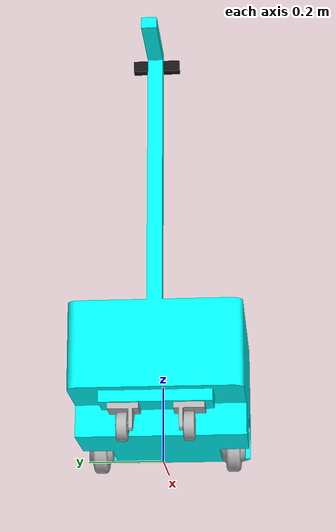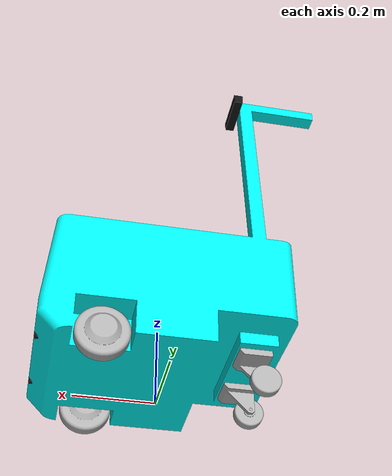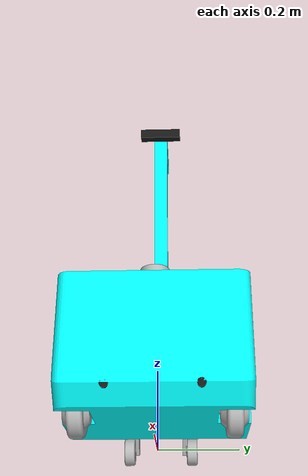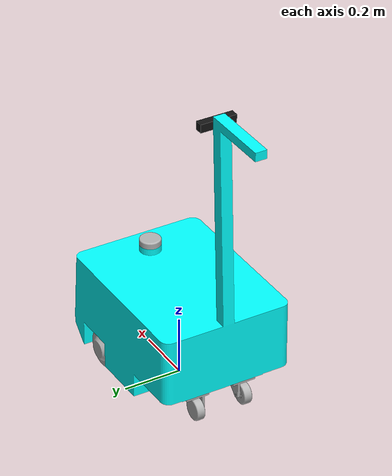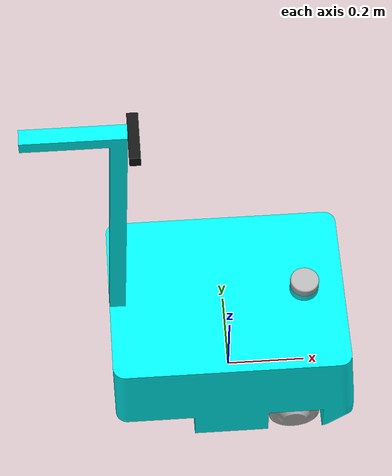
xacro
<?xml version="1.0" ?>
<robot name="VICA" xmlns:xacro="http://www.ros.org/wiki/xacro">

<!-- Keep includes relative so this file expands before the package is installed. -->
<xacro:include filename="materials.xacro" />

<xacro:arg name="use_arm" default="false" />
<xacro:property name="use_arm" value="$(arg use_arm)" />
<xacro:arg name="arm_riser_h" default="0.10" />
<xacro:property name="arm_riser_h" value="$(arg arm_riser_h)" />

<xacro:arg name="arm_model" default="omx" />
<xacro:property name="arm_model" value="$(arg arm_model)" />
<xacro:arg name="arm_link3_len" default="0.30" />
<xacro:arg name="arm_link4_len" default="0.28" />
<xacro:arg name="arm_link5_len" default="0.126" />

<xacro:property name="body_center_z" value="0.041" />
<xacro:property name="base_link_height" value="0.19" />
<xacro:property name="chassis_body_size_x" value="0.61" />
<xacro:property name="chassis_body_size_y" value="0.28" />
<xacro:property name="chassis_body_size_z" value="0.401" />
<xacro:property name="chassis_body_origin_z" value="0.0585" />
<xacro:property name="chassis_body_size"
                value="${chassis_body_size_x} ${chassis_body_size_y} ${chassis_body_size_z}" />
<xacro:property name="chassis_body_origin" value="0 0 ${chassis_body_origin_z}" />
<xacro:property name="chassis_deck_z"
                value="${chassis_body_origin_z + chassis_body_size_z / 2}" />
<xacro:property name="chassis_deck_measured_z" value="0.170" />
<xacro:property name="chassis_mast_size" value="0.24 0.04 0.626" />
<xacro:property name="chassis_mast_origin" value="-0.358 0 0.572" />

<!-- Sensor origins are relative to base_link. -->
<xacro:property name="laser_x" value="0.185" />
<xacro:property name="laser_y" value="0.0" />
<xacro:property name="laser_z" value="0.192" />
<xacro:property name="camera_x" value="-0.225" />
<xacro:property name="camera_y" value="0.0" />
<xacro:property name="camera_z" value="0.855" />
<xacro:property name="camera_pitch" value="-0.0124" />
<xacro:property name="usonic_x" value="0.305" />
<xacro:property name="usonic_y" value="0.107" />
<xacro:property name="usonic_z" value="-0.0987" />

<xacro:property name="wheel_separation" value="0.364" />
<xacro:property name="wheel_y" value="${wheel_separation / 2}" />
<xacro:property name="caster_steer_y" value="0.0845" />
<xacro:property name="caster_y" value="0.0795" />
<xacro:property name="caster_wheel_dy" value="${round(caster_y - caster_steer_y, 6)}" />

<!-- Conservative import defaults; tune these against the physical platform. -->
<xacro:property name="wheel_effort" value="100.0" />
<xacro:property name="wheel_velocity" value="20.0" />
<xacro:property name="wheel_damping" value="0.1" />
<!-- Primitive drive-wheel collisions derived from the STL bounds. -->
<xacro:property name="drive_wheel_radius" value="0.065" />
<xacro:property name="drive_wheel_width" value="0.0678" />
<!-- Primitive caster-wheel collisions derived from the STL bounds. -->
<xacro:property name="caster_wheel_radius" value="0.0375" />
<xacro:property name="caster_wheel_width" value="0.04" />
<xacro:property name="caster_collision_radius" value="0.042" />

<link name="base_footprint"/>

<joint name="base_footprint_joint" type="fixed">
  <origin xyz="0 0 ${base_link_height}" rpy="0 0 0"/>
  <parent link="base_footprint"/>
  <child link="base_link"/>
</joint>

<link name="base_link">
  <inertial>
    <origin xyz="0.004031215194176557 3.002726997808124e-17 0.03506562657816282" rpy="0 0 0"/>
    <mass value="16.5675"/>
    <inertia ixx="0.438065" iyy="0.660628" izz="0.759891" ixy="0.0" iyz="-0.0" ixz="0.062604"/>
  </inertial>
  <visual>
    <origin xyz="0 0 -${body_center_z}" rpy="0 0 0"/>
    <geometry>
      <mesh filename="package://vica_description/meshes/base_link_mast.stl" scale="0.001 0.001 0.001"/>
    </geometry>
    <material name="body_blue"/>
  </visual>
  <!-- Keep the lower collider narrow enough to leave the wheel contact region clear. -->
  <collision name="chassis_body_collision">
    <origin xyz="${chassis_body_origin}" rpy="0 0 0"/>
    <geometry>
      <box size="${chassis_body_size}"/>
    </geometry>
  </collision>
  <collision name="chassis_mast_collision">
    <origin xyz="${chassis_mast_origin}" rpy="0 0 0"/>
    <geometry>
      <box size="${chassis_mast_size}"/>
    </geometry>
  </collision>
</link>

<link name="left_wheel_1">
  <inertial>
    <origin xyz="2.0539125955565396e-15 0.03668765550201605 0.0" rpy="0 0 0"/>
    <mass value="0.5663250710944822"/>
    <inertia ixx="0.000634" iyy="0.001025" izz="0.000634" ixy="0.0" iyz="-0.0" ixz="0.0"/>
  </inertial>
  <visual>
    <origin xyz="-0.154 ${-wheel_y} 0.084" rpy="0 0 0"/>
    <geometry>
      <mesh filename="package://vica_description/meshes/left_wheel_1.stl" scale="0.001 0.001 0.001"/>
    </geometry>
    <material name="silver"/>
  </visual>
  <collision>
    <!-- URDF cylinders are Z-aligned; rotate onto this wheel's Y axis. -->
    <origin xyz="0 0 0" rpy="${pi / 2} 0 0"/>
    <geometry>
      <cylinder radius="${drive_wheel_radius}" length="${drive_wheel_width}"/>
    </geometry>
  </collision>
</link>

<link name="right_wheel_1">
  <inertial>
    <origin xyz="-0.00046568184733652984 -0.03568765550201608 0.0009570426748952837" rpy="0 0 0"/>
    <mass value="0.5663250710944814"/>
    <inertia ixx="0.000634" iyy="0.001025" izz="0.000634" ixy="0.0" iyz="0.0" ixz="-0.0"/>
  </inertial>
  <visual>
    <origin xyz="-0.154 ${wheel_y} 0.084" rpy="0 0 0"/>
    <geometry>
      <mesh filename="package://vica_description/meshes/right_wheel_1.stl" scale="0.001 0.001 0.001"/>
    </geometry>
    <material name="silver"/>
  </visual>
  <collision>
    <!-- URDF cylinders are Z-aligned; rotate onto this wheel's Y axis. -->
    <origin xyz="0 0 0" rpy="${pi / 2} 0 0"/>
    <geometry>
      <cylinder radius="${drive_wheel_radius}" length="${drive_wheel_width}"/>
    </geometry>
  </collision>
</link>

<link name="front_left_caster_wheel_1">
  <inertial>
    <origin xyz="-1.6653345369377348e-15 0.01574568542726719 0.0" rpy="0 0 0"/>
    <mass value="0.11451893837110633"/>
    <inertia ixx="4.7e-05" iyy="7.8e-05" izz="4.7e-05" ixy="-0.0" iyz="0.0" ixz="0.0"/>
  </inertial>
  <visual>
    <origin xyz="0.252 ${-caster_y} 0.107" rpy="0 0 0"/>
    <geometry>
      <mesh filename="package://vica_description/meshes/front_left_caster_wheel_1.stl" scale="0.001 0.001 0.001"/>
    </geometry>
    <material name="silver"/>
  </visual>
  <collision>
    <!-- URDF cylinders are Z-aligned; rotate onto this wheel's Y axis. -->
    <origin xyz="0 0 0" rpy="${pi / 2} 0 0"/>
    <geometry>
      <cylinder radius="${caster_collision_radius}" length="${caster_wheel_width}"/>
    </geometry>
  </collision>
</link>

<link name="front_right_caster_wheel_1">
  <inertial>
    <origin xyz="5.162537064506978e-15 -0.015745685427267203 0.0" rpy="0 0 0"/>
    <mass value="0.11451893837110629"/>
    <inertia ixx="4.7e-05" iyy="7.8e-05" izz="4.7e-05" ixy="-0.0" iyz="0.0" ixz="-0.0"/>
  </inertial>
  <visual>
    <origin xyz="0.252 ${caster_y} 0.107" rpy="0 0 0"/>
    <geometry>
      <mesh filename="package://vica_description/meshes/front_right_caster_wheel_1.stl" scale="0.001 0.001 0.001"/>
    </geometry>
    <material name="silver"/>
  </visual>
  <collision>
    <!-- URDF cylinders are Z-aligned; rotate onto this wheel's Y axis. -->
    <origin xyz="0 0 0" rpy="${pi / 2} 0 0"/>
    <geometry>
      <cylinder radius="${caster_collision_radius}" length="${caster_wheel_width}"/>
    </geometry>
  </collision>
</link>

<link name="front_right_caster_steer_1">
  <inertial>
    <origin xyz="-0.004080894044594496 0.0037449849629774684 -0.017666622102230287" rpy="0 0 0"/>
    <mass value="0.9536308497491053"/>
    <inertia ixx="0.000637" iyy="0.000626" izz="0.000908" ixy="4e-05" iyz="8.5e-05" ixz="-8.2e-05"/>
  </inertial>
  <visual>
    <origin xyz="0.222 ${caster_steer_y} 0.0415" rpy="0 0 0"/>
    <geometry>
      <mesh filename="package://vica_description/meshes/front_right_caster_steer_1.stl" scale="0.001 0.001 0.001"/>
    </geometry>
    <material name="silver"/>
  </visual>
  <collision>
    <!-- CAD bounding box of the steer bracket; the STL became a convex hull on import. -->
    <origin xyz="0 0 0.003" rpy="0 0 0"/>
    <geometry>
      <box size="0.08 0.08 0.0755"/>
    </geometry>
  </collision>
</link>

<link name="front_left_caster_steer_1">
  <inertial>
    <origin xyz="-0.004080894044594496 -0.003744984962977496 -0.017666622102230287" rpy="0 0 0"/>
    <mass value="0.9536308497491053"/>
    <inertia ixx="0.000637" iyy="0.000626" izz="0.000908" ixy="-4e-05" iyz="-8.5e-05" ixz="-8.2e-05"/>
  </inertial>
  <visual>
    <origin xyz="0.222 ${-caster_steer_y} 0.0415" rpy="0 0 0"/>
    <geometry>
      <mesh filename="package://vica_description/meshes/front_left_caster_steer_1.stl" scale="0.001 0.001 0.001"/>
    </geometry>
    <material name="silver"/>
  </visual>
  <collision>
    <!-- CAD bounding box of the steer bracket; the STL became a convex hull on import. -->
    <origin xyz="0 0 0.003" rpy="0 0 0"/>
    <geometry>
      <box size="0.08 0.08 0.0755"/>
    </geometry>
  </collision>
</link>

<link name="laser_frame">
  <inertial>
    <origin xyz="0.0 0.0 0.010868727234877334" rpy="0 0 0"/>
    <mass value="0.16353480730457975"/>
    <inertia ixx="5.9e-05" iyy="5.9e-05" izz="0.000105" ixy="0.0" iyz="-0.0" ixz="-0.0"/>
  </inertial>
  <visual>
    <origin xyz="-0.185 -0.0 ${-(laser_z + body_center_z)}" rpy="0 0 0"/>
    <geometry>
      <mesh filename="package://vica_description/meshes/lidar_1.stl" scale="0.001 0.001 0.001"/>
    </geometry>
    <material name="silver"/>
  </visual>
  <!-- No collision: a lidar has nothing to collide with, and the STL becomes a
       convex hull on Isaac import that the scan then sees as an obstacle. -->
</link>

<link name="camera_link">
  <!-- RViz placeholder; Isaac Sim uses its own D455 USD sensor asset. -->
  <inertial>
    <origin xyz="0 0 0" rpy="0 0 0"/>
    <mass value="0.113"/>
    <inertia ixx="1.53e-4" iyy="1.43e-5" izz="1.51e-4"
             ixy="0.0" iyz="0.0" ixz="0.0"/>
  </inertial>
  <visual>
    <origin xyz="0 0 0" rpy="0 0 0"/>
    <geometry>
      <!-- D455 nominal depth x width x height: 26 x 124 x 29 mm. -->
      <box size="0.026 0.124 0.029"/>
    </geometry>
    <material name="camera_black"/>
  </visual>
</link>
<link name="camera_optical_frame"/>
<link name="camera_color_optical_frame"/>
<link name="camera_depth_optical_frame"/>

<joint name="left_wheel_joint" type="continuous">
  <origin xyz="0.154 ${wheel_y} -0.125" rpy="0 0 0"/>
  <parent link="base_link"/>
  <child link="left_wheel_1"/>
  <axis xyz="0.0 1.0 0.0"/>
  <dynamics damping="${wheel_damping}" friction="0.0"/>
  <limit effort="${wheel_effort}" velocity="${wheel_velocity}"/>
</joint>

<joint name="right_wheel_joint" type="continuous">
  <origin xyz="0.154 ${-wheel_y} -0.125" rpy="0 0 0"/>
  <parent link="base_link"/>
  <child link="right_wheel_1"/>
  <axis xyz="0.0 1.0 0.0"/>
  <dynamics damping="${wheel_damping}" friction="0.0"/>
  <limit effort="${wheel_effort}" velocity="${wheel_velocity}"/>
</joint>

<joint name="front_left_caster_wheel_joint" type="continuous">
  <origin xyz="-0.03 ${caster_wheel_dy} -0.0655" rpy="0 0 0"/>
  <parent link="front_left_caster_steer_1"/>
  <child link="front_left_caster_wheel_1"/>
  <axis xyz="0.0 -1.0 0.0"/>
</joint>

<joint name="front_right_caster_wheel_joint" type="continuous">
  <origin xyz="-0.03 ${-caster_wheel_dy} -0.0655" rpy="0 0 0"/>
  <parent link="front_right_caster_steer_1"/>
  <child link="front_right_caster_wheel_1"/>
  <axis xyz="0.0 -1.0 0.0"/>
</joint>

<joint name="front_right_caster_steer_joint" type="continuous">
  <origin xyz="-0.222 ${-caster_steer_y} -0.0825" rpy="0 0 0"/>
  <parent link="base_link"/>
  <child link="front_right_caster_steer_1"/>
  <axis xyz="0.0 0.0 -1.0"/>
</joint>

<joint name="front_left_caster_steer_joint" type="continuous">
  <origin xyz="-0.222 ${caster_steer_y} -0.0825" rpy="0 0 0"/>
  <parent link="base_link"/>
  <child link="front_left_caster_steer_1"/>
  <axis xyz="0.0 0.0 -1.0"/>
</joint>

<!-- Sensor positions are expressed relative to the body-centered base_link. -->
<joint name="laser_joint" type="fixed">
  <origin xyz="${laser_x} ${laser_y} ${laser_z}" rpy="0 0 0"/>
  <parent link="base_link"/>
  <child link="laser_frame"/>
</joint>

<xacro:property name="usonic_radius" value="0.010" />
<xacro:property name="usonic_len" value="0.015" />

<xacro:macro name="usonic_probe" params="name y">
  <link name="${name}">
    <inertial>
      <origin xyz="${-usonic_len/2} 0 0" rpy="0 0 0"/>
      <mass value="0.03"/>
      <inertia ixx="1.5e-6" iyy="1.5e-6" izz="1.5e-6" ixy="0" iyz="0" ixz="0"/>
    </inertial>
    <visual>
      <origin xyz="${-usonic_len/2} 0 0" rpy="0 ${pi/2} 0"/>
      <geometry>
        <cylinder radius="${usonic_radius}" length="${usonic_len}"/>
      </geometry>
      <material name="camera_black"/>
    </visual>
  </link>
  <joint name="${name}_joint" type="fixed">
    <origin xyz="${usonic_x} ${y} ${usonic_z}" rpy="0 0 0"/>
    <parent link="base_link"/>
    <child link="${name}"/>
  </joint>
</xacro:macro>

<xacro:usonic_probe name="usonic_front_left"  y="${usonic_y}" />
<xacro:usonic_probe name="usonic_front_right" y="${-usonic_y}" />

<joint name="camera_joint" type="fixed">
  <origin xyz="${camera_x} ${camera_y} ${camera_z}" rpy="0 ${camera_pitch} 0"/>
  <parent link="base_link"/>
  <child link="camera_link"/>
</joint>

<!-- REP-103 optical convention: +Z forward, +X right, +Y down. -->
<joint name="camera_optical_joint" type="fixed">
  <origin xyz="0 0 0" rpy="-${pi / 2} 0 -${pi / 2}"/>
  <parent link="camera_link"/>
  <child link="camera_optical_frame"/>
</joint>

<!-- Same rotation, under the names the RealSense driver would publish. See the
     note at the link declarations for why these exist only in simulation. -->
<joint name="camera_color_optical_joint" type="fixed">
  <origin xyz="0 0 0" rpy="-${pi / 2} 0 -${pi / 2}"/>
  <parent link="camera_link"/>
  <child link="camera_color_optical_frame"/>
</joint>

<joint name="camera_depth_optical_joint" type="fixed">
  <origin xyz="0 0 0" rpy="-${pi / 2} 0 -${pi / 2}"/>
  <parent link="camera_link"/>
  <child link="camera_depth_optical_frame"/>
</joint>

<!-- Manipulator mount. Nothing below this line exists unless use_arm:=true. -->
<xacro:if value="${use_arm}">

  <xacro:property name="arm_riser_side" value="0.12" />
  <xacro:property name="arm_riser_mass" value="2.0" />

  <xacro:if value="${arm_riser_h > 0}">
    <link name="arm_riser_link">
      <visual>
        <origin xyz="0 0 ${arm_riser_h / 2}" rpy="0 0 0"/>
        <geometry>
          <box size="${arm_riser_side} ${arm_riser_side} ${arm_riser_h}"/>
        </geometry>
        <material name="silver"/>
      </visual>
      <collision>
        <origin xyz="0 0 ${arm_riser_h / 2}" rpy="0 0 0"/>
        <geometry>
          <box size="${arm_riser_side} ${arm_riser_side} ${arm_riser_h}"/>
        </geometry>
      </collision>
      <inertial>
        <origin xyz="0 0 ${arm_riser_h / 2}" rpy="0 0 0"/>
        <mass value="${arm_riser_mass}"/>
        <inertia
          ixx="${arm_riser_mass * (arm_riser_side ** 2 + arm_riser_h ** 2) / 12}"
          iyy="${arm_riser_mass * (arm_riser_side ** 2 + arm_riser_h ** 2) / 12}"
          izz="${arm_riser_mass * 2 * arm_riser_side ** 2 / 12}"
          ixy="0.0" iyz="0.0" ixz="0.0"/>
      </inertial>
    </link>

    <joint name="arm_riser_joint" type="fixed">
      <origin xyz="0 0 ${chassis_deck_measured_z}" rpy="0 0 0"/>
      <parent link="base_link"/>
      <child link="arm_riser_link"/>
    </joint>

    <link name="arm_mount_link"/>

    <joint name="arm_mount_joint" type="fixed">
      <origin xyz="0 0 ${arm_riser_h}" rpy="0 0 0"/>
      <parent link="arm_riser_link"/>
      <child link="arm_mount_link"/>
    </joint>
  </xacro:if>

  <xacro:unless value="${arm_riser_h > 0}">
    <link name="arm_mount_link"/>

    <joint name="arm_mount_joint" type="fixed">
      <origin xyz="0 0 ${chassis_deck_measured_z}" rpy="0 0 0"/>
      <parent link="base_link"/>
      <child link="arm_mount_link"/>
    </joint>
  </xacro:unless>

  <xacro:if value="${arm_model == 'omx'}">
    <!-- Transcribed rather than included, for the three reasons omx_arm.xacro
         gives at length. The short one: the package is not installed here and
         the lengths have to be ours to change. -->
    <xacro:include filename="omx_arm.xacro" />
    <xacro:omx_arm parent="arm_mount_link" prefix="omx_"
                   link3_len="$(arg arm_link3_len)"
                   link4_len="$(arg arm_link4_len)"
                   link5_len="$(arg arm_link5_len)">
      <origin xyz="0 0 0" rpy="0 0 0"/>
    </xacro:omx_arm>
  </xacro:if>

  <xacro:if value="${arm_model == 'gen3_lite'}">
    <xacro:include filename="$(find kortex_description)/arms/gen3_lite/6dof/urdf/gen3_lite_macro.xacro" />

    <xacro:load_arm
        parent="arm_mount_link"
        prefix="gen3_"
        dof="6"
        vision="false"
        robot_ip="0.0.0.0"
        gripper_joint_name="gen3_gripper"
        use_fake_hardware="true"
        sim_isaac="false"
        sim_gazebo="false">
      <origin xyz="0 0 0" rpy="0 0 0"/>
    </xacro:load_arm>
  </xacro:if>

</xacro:if>

</robot>

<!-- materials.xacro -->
<robot name="VICA" xmlns:xacro="http://www.ros.org/wiki/xacro" >

<material name="body_blue">
  <color rgba="0 1.0 1.0 1.0"/>
</material>

<material name="silver">
  <color rgba="0.70 0.70 0.70 1.0"/>
</material>

<material name="camera_black">
  <color rgba="0.08 0.08 0.08 1.0"/>
</material>

</robot>
